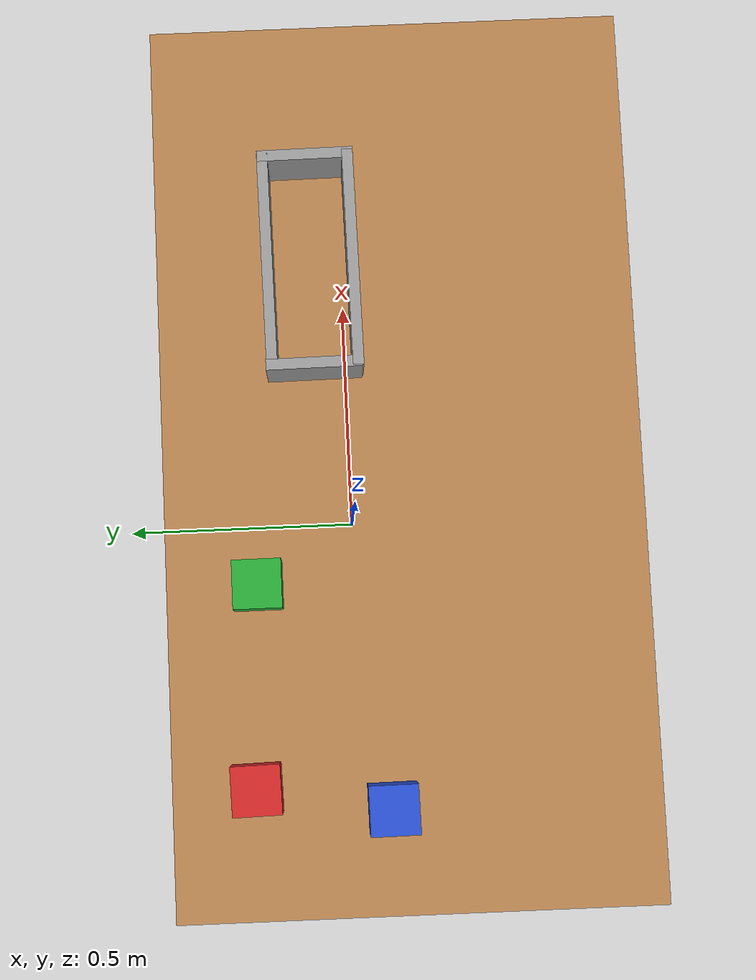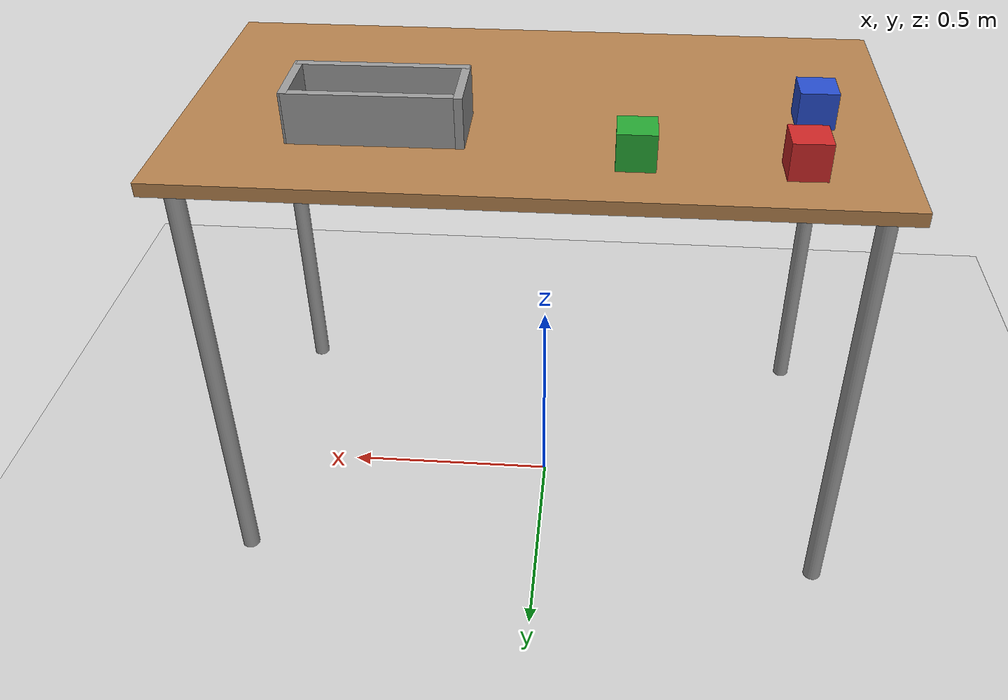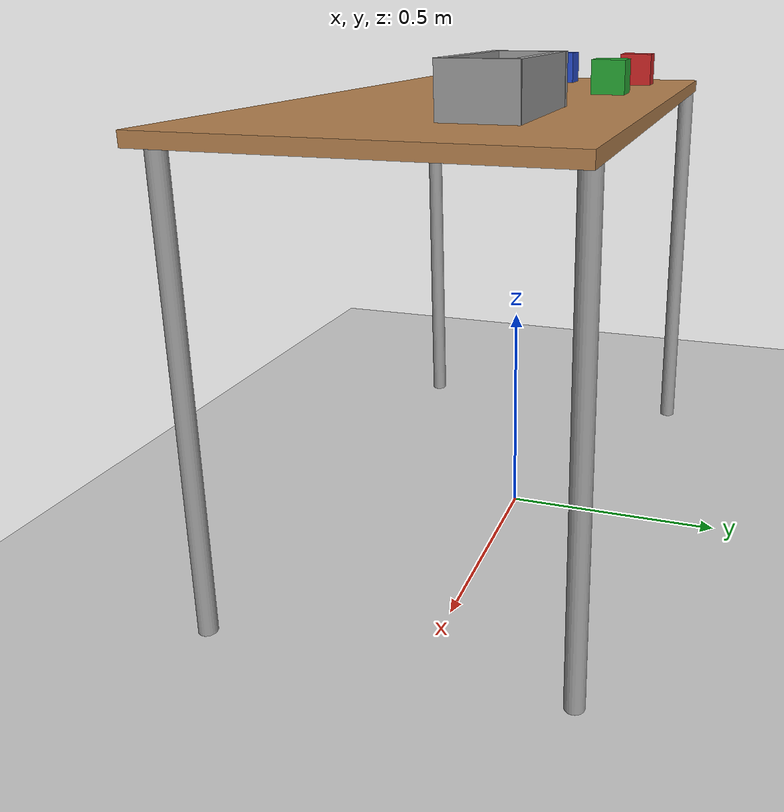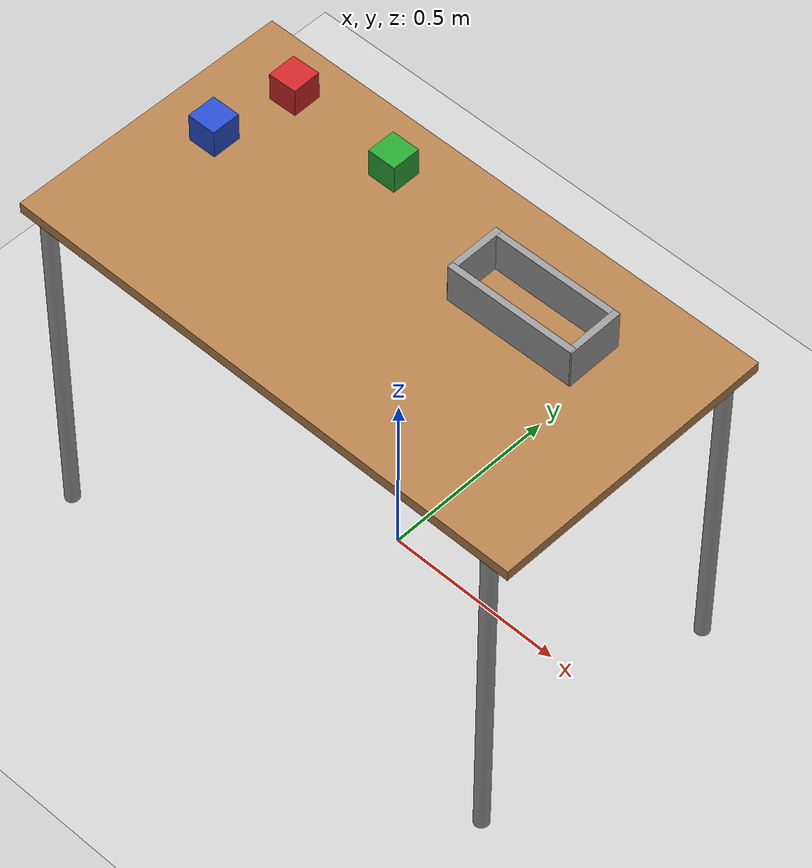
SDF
<sdf version="1.6">
 <world name="default">
  <model name="ground_plane">
   <static>1</static>
   <link name="link">
    <collision name="collision">
     <geometry><plane><normal>0 0 1</normal><size>100 100</size></plane></geometry>
     <surface>
      <contact><collide_bitmask>65535</collide_bitmask></contact>
      <friction><ode><mu>100</mu><mu2>50</mu2></ode></friction>
     </surface>
    </collision>
    <visual name="visual">
     <cast_shadows>0</cast_shadows>
     <geometry><plane><normal>0 0 1</normal><size>100 100</size></plane></geometry>
     <material>
      <script><uri>file://media/materials/scripts/gazebo.material</uri><name>Gazebo/Grey</name></script>
     </material>
    </visual>
   </link>
  </model>
  <light name="sun" type="directional">
   <pose>0 0 10 0 -0 0</pose>
   <diffuse>0.8 0.8 0.8 1</diffuse>
   <specular>0.2 0.2 0.2 1</specular>
   <attenuation>
    <range>1000</range>
    <constant>0.9</constant>
    <linear>0.01</linear>
    <quadratic>0.001</quadratic>
   </attenuation>
   <direction>-0.5 0.1 -0.9</direction>
  </light>
  <physics name="default_physics" default="0" type="ode">
   <max_step_size>0.001</max_step_size>
   <real_time_factor>1</real_time_factor>
   <real_time_update_rate>1000</real_time_update_rate>
  </physics>
  <gravity>0 0 -9.81</gravity>
  <magnetic_field>6e-06 2.3e-05 -4.2e-05</magnetic_field>
  <atmosphere type="adiabatic"/>
  <scene><ambient>0.4 0.4 0.4 1</ambient><background>0.7 0.7 0.7 1</background><shadows>1</shadows></scene>
  <audio><device>default</device></audio>
  <spherical_coordinates>
   <surface_model>EARTH_WGS84</surface_model>
   <latitude_deg>0</latitude_deg>
   <longitude_deg>0</longitude_deg>
   <elevation>0</elevation>
   <heading_deg>0</heading_deg>
  </spherical_coordinates>
  <model name="table_clone">
   <static>1</static>
   <link name="link">
    <collision name="surface">
     <pose>0 0 1 0 -0 0</pose>
     <geometry><box><size>1.5 0.8 0.03</size></box></geometry>
     <surface><friction><ode><mu>0.6</mu><mu2>0.6</mu2></ode></friction></surface>
    </collision>
    <visual name="visual1">
     <pose>0 0 1 0 -0 0</pose>
     <geometry><box><size>1.5 0.8 0.03</size></box></geometry>
     <material>
      <script><uri>file://media/materials/scripts/gazebo.material</uri><name>Gazebo/Wood</name></script>
     </material>
    </visual>
    <collision name="front_left_leg">
     <pose>0.68 0.38 0.5 0 -0 0</pose>
     <geometry><cylinder><radius>0.02</radius><length>1</length></cylinder></geometry>
    </collision>
    <visual name="front_left_leg">
     <pose>0.68 0.38 0.5 0 -0 0</pose>
     <geometry><cylinder><radius>0.02</radius><length>1</length></cylinder></geometry>
     <material>
      <script><uri>file://media/materials/scripts/gazebo.material</uri><name>Gazebo/Grey</name></script>
     </material>
    </visual>
    <collision name="front_right_leg">
     <pose>0.68 -0.38 0.5 0 -0 0</pose>
     <geometry><cylinder><radius>0.02</radius><length>1</length></cylinder></geometry>
    </collision>
    <visual name="front_right_leg">
     <pose>0.68 -0.38 0.5 0 -0 0</pose>
     <geometry><cylinder><radius>0.02</radius><length>1</length></cylinder></geometry>
     <material>
      <script><uri>file://media/materials/scripts/gazebo.material</uri><name>Gazebo/Grey</name></script>
     </material>
    </visual>
    <collision name="back_right_leg">
     <pose>-0.68 -0.38 0.5 0 -0 0</pose>
     <geometry><cylinder><radius>0.02</radius><length>1</length></cylinder></geometry>
    </collision>
    <visual name="back_right_leg">
     <pose>-0.68 -0.38 0.5 0 -0 0</pose>
     <geometry><cylinder><radius>0.02</radius><length>1</length></cylinder></geometry>
     <material>
      <script><uri>file://media/materials/scripts/gazebo.material</uri><name>Gazebo/Grey</name></script>
     </material>
    </visual>
    <collision name="back_left_leg">
     <pose>-0.68 0.38 0.5 0 -0 0</pose>
     <geometry><cylinder><radius>0.02</radius><length>1</length></cylinder></geometry>
    </collision>
    <visual name="back_left_leg">
     <pose>-0.68 0.38 0.5 0 -0 0</pose>
     <geometry><cylinder><radius>0.02</radius><length>1</length></cylinder></geometry>
     <material>
      <script><uri>file://media/materials/scripts/gazebo.material</uri><name>Gazebo/Grey</name></script>
     </material>
    </visual>
   </link>
   <pose>0.019553 -0.071317 0 0 -0 0</pose>
  </model>
  <model name="GreenBox">
   <link name="link">
    <inertial>
     <mass>0.29</mass>
     <inertia>
      <ixx>0.00193333</ixx>
      <ixy>0</ixy>
      <ixz>0</ixz>
      <iyy>0.00193333</iyy>
      <iyz>0</iyz>
      <izz>0.00193333</izz>
     </inertia>
    </inertial>
    <visual name="visual">
     <geometry><box><size>0.08 0.08 0.08</size></box></geometry>
     <material>
      <script><name>Gazebo/Green</name><uri>file://media/materials/scripts/gazebo.material</uri></script>
      <shader type="vertex"><normal_map>__default__</normal_map></shader>
      <ambient>0 0.3 0 1</ambient>
      <diffuse>0.7 0.7 0.7 1</diffuse>
      <specular>0.01 0.01 0.01 1</specular>
      <emissive>0 0 0 1</emissive>
     </material>
    </visual>
    <collision name="collision">
     <geometry><box><size>0.081 0.081 0.081</size></box></geometry>
     <surface>
      <friction>
       <ode><mu>1</mu><mu2>1</mu2><fdir1>0 0 0</fdir1><slip1>0</slip1><slip2>0</slip2></ode>
       <torsional>
        <coefficient>1</coefficient>
        <patch_radius>0</patch_radius>
        <surface_radius>0</surface_radius>
        <use_patch_radius>1</use_patch_radius>
        <ode><slip>0</slip></ode>
       </torsional>
      </friction>
      <bounce><restitution_coefficient>0</restitution_coefficient><threshold>1e+06</threshold></bounce>
      <contact>
       <collide_without_contact>0</collide_without_contact>
       <collide_without_contact_bitmask>1</collide_without_contact_bitmask>
       <collide_bitmask>1</collide_bitmask>
       <ode>
        <soft_cfm>0</soft_cfm>
        <soft_erp>0.2</soft_erp>
        <kp>1e+13</kp>
        <kd>1</kd>
        <max_vel>0.01</max_vel>
        <min_depth>0</min_depth>
       </ode>
       <bullet>
        <split_impulse>1</split_impulse>
        <split_impulse_penetration_threshold>-0.01</split_impulse_penetration_threshold>
        <soft_cfm>0</soft_cfm>
        <soft_erp>0.2</soft_erp>
        <kp>1e+13</kp>
        <kd>1</kd>
       </bullet>
      </contact>
     </surface>
    </collision>
   </link>
   <static>0</static>
   <pose>-0.18866 0.175884 1.0555 -3.6e-05 3.1e-05 0.001832</pose>
  </model>
  <model name="RedBox">
   <link name="link">
    <inertial>
     <mass>0.29</mass>
     <inertia>
      <ixx>0.00193333</ixx>
      <ixy>0</ixy>
      <ixz>0</ixz>
      <iyy>0.00193333</iyy>
      <iyz>0</iyz>
      <izz>0.00193333</izz>
     </inertia>
    </inertial>
    <visual name="visual">
     <geometry><box><size>0.08 0.08 0.08</size></box></geometry>
     <material>
      <script><name>Gazebo/Red</name><uri>file://media/materials/scripts/gazebo.material</uri></script>
      <shader type="vertex"><normal_map>__default__</normal_map></shader>
      <ambient>0.3 0 0 1</ambient>
      <diffuse>0.7 0.7 0.7 1</diffuse>
      <specular>0.01 0.01 0.01 1</specular>
      <emissive>0 0 0 1</emissive>
     </material>
    </visual>
    <collision name="collision">
     <geometry><box><size>0.081 0.081 0.081</size></box></geometry>
     <surface>
      <friction>
       <ode><mu>1</mu><mu2>1</mu2><fdir1>0 0 0</fdir1><slip1>0</slip1><slip2>0</slip2></ode>
       <torsional>
        <coefficient>1</coefficient>
        <patch_radius>0</patch_radius>
        <surface_radius>0</surface_radius>
        <use_patch_radius>1</use_patch_radius>
        <ode><slip>0</slip></ode>
       </torsional>
      </friction>
      <bounce><restitution_coefficient>0</restitution_coefficient><threshold>1e+06</threshold></bounce>
      <contact>
       <collide_without_contact>0</collide_without_contact>
       <collide_without_contact_bitmask>1</collide_without_contact_bitmask>
       <collide_bitmask>1</collide_bitmask>
       <ode>
        <soft_cfm>0</soft_cfm>
        <soft_erp>0.2</soft_erp>
        <kp>1e+13</kp>
        <kd>1</kd>
        <max_vel>0.01</max_vel>
        <min_depth>0</min_depth>
       </ode>
       <bullet>
        <split_impulse>1</split_impulse>
        <split_impulse_penetration_threshold>-0.01</split_impulse_penetration_threshold>
        <soft_cfm>0</soft_cfm>
        <soft_erp>0.2</soft_erp>
        <kp>1e+13</kp>
        <kd>1</kd>
       </bullet>
      </contact>
     </surface>
    </collision>
   </link>
   <static>0</static>
   <pose>-0.516592 0.188856 1.0555 3.8e-05 2.6e-05 0.023303</pose>
  </model>
  <model name="BlueBox">
   <link name="link">
    <inertial>
     <mass>0.29</mass>
     <inertia>
      <ixx>0.00193333</ixx>
      <ixy>0</ixy>
      <ixz>0</ixz>
      <iyy>0.00193333</iyy>
      <iyz>0</iyz>
      <izz>0.00193333</izz>
     </inertia>
    </inertial>
    <visual name="visual">
     <geometry><box><size>0.08 0.08 0.08</size></box></geometry>
     <material>
      <script><name>Gazebo/Blue</name><uri>file://media/materials/scripts/gazebo.material</uri></script>
      <shader type="vertex"><normal_map>__default__</normal_map></shader>
      <ambient>0 0 0.3 1</ambient>
      <diffuse>0.7 0.7 0.7 1</diffuse>
      <specular>0.01 0.01 0.01 1</specular>
      <emissive>0 0 0 1</emissive>
     </material>
    </visual>
    <collision name="collision">
     <geometry><box><size>0.081 0.081 0.081</size></box></geometry>
     <surface>
      <friction>
       <ode><mu>1</mu><mu2>1</mu2><fdir1>0 0 0</fdir1><slip1>0</slip1><slip2>0</slip2></ode>
       <torsional>
        <coefficient>1</coefficient>
        <patch_radius>0</patch_radius>
        <surface_radius>0</surface_radius>
        <use_patch_radius>1</use_patch_radius>
        <ode><slip>0</slip></ode>
       </torsional>
      </friction>
      <bounce><restitution_coefficient>0</restitution_coefficient><threshold>1e+06</threshold></bounce>
      <contact>
       <collide_without_contact>0</collide_without_contact>
       <collide_without_contact_bitmask>1</collide_without_contact_bitmask>
       <collide_bitmask>1</collide_bitmask>
       <ode>
        <soft_cfm>0</soft_cfm>
        <soft_erp>0.2</soft_erp>
        <kp>1e+13</kp>
        <kd>1</kd>
        <max_vel>0.01</max_vel>
        <min_depth>0</min_depth>
       </ode>
       <bullet>
        <split_impulse>1</split_impulse>
        <split_impulse_penetration_threshold>-0.01</split_impulse_penetration_threshold>
        <soft_cfm>0</soft_cfm>
        <soft_erp>0.2</soft_erp>
        <kp>1e+13</kp>
        <kd>1</kd>
       </bullet>
      </contact>
     </surface>
    </collision>
   </link>
   <static>0</static>
   <pose>-0.556283 -0.029344 1.0555 0 -1.9e-05 0.009847</pose>
  </model>
  <model name="DepositBox">
   <link name="link_0">
    <inertial>
     <mass>0.00071026</mass>
     <inertia>
      <ixx>7.3e-07</ixx>
      <ixy>0</ixy>
      <ixz>0</ixz>
      <iyy>8.36e-06</iyy>
      <iyz>0</iyz>
      <izz>7.66e-06</izz>
     </inertia>
    </inertial>
    <pose>-0 -0.07 5e-06 0 -0 0</pose>
    <visual name="visual">
     <geometry><box><size>0.359288 0.017976 0.109964</size></box></geometry>
     <material>
      <lighting>1</lighting>
      <script><uri>file://media/materials/scripts/gazebo.material</uri><name>Gazebo/Grey</name></script>
      <emissive>0 0 0 1</emissive>
      <shader type="vertex"><normal_map>__default__</normal_map></shader>
      <ambient>0.3 0.3 0.3 1</ambient>
      <diffuse>0.7 0.7 0.7 1</diffuse>
      <specular>0.1 0.1 0.1 1</specular>
     </material>
    </visual>
    <collision name="collision">
     <geometry><box><size>0.359288 0.017976 0.109964</size></box></geometry>
     <surface>
      <friction>
       <ode><mu>1</mu><mu2>1</mu2><fdir1>0 0 0</fdir1><slip1>0</slip1><slip2>0</slip2></ode>
       <torsional>
        <coefficient>1</coefficient>
        <patch_radius>0</patch_radius>
        <surface_radius>0</surface_radius>
        <use_patch_radius>1</use_patch_radius>
        <ode><slip>0</slip></ode>
       </torsional>
      </friction>
      <bounce><restitution_coefficient>0</restitution_coefficient><threshold>1e+06</threshold></bounce>
      <contact>
       <collide_without_contact>0</collide_without_contact>
       <collide_without_contact_bitmask>1</collide_without_contact_bitmask>
       <collide_bitmask>1</collide_bitmask>
       <ode>
        <soft_cfm>0</soft_cfm>
        <soft_erp>0.2</soft_erp>
        <kp>1e+13</kp>
        <kd>1</kd>
        <max_vel>0.01</max_vel>
        <min_depth>0</min_depth>
       </ode>
       <bullet>
        <split_impulse>1</split_impulse>
        <split_impulse_penetration_threshold>-0.01</split_impulse_penetration_threshold>
        <soft_cfm>0</soft_cfm>
        <soft_erp>0.2</soft_erp>
        <kp>1e+13</kp>
        <kd>1</kd>
       </bullet>
      </contact>
     </surface>
    </collision>
   </link>
   <link name="link_0_clone">
    <inertial>
     <mass>0.00071026</mass>
     <inertia>
      <ixx>7.3e-07</ixx>
      <ixy>0</ixy>
      <ixz>0</ixz>
      <iyy>8.36e-06</iyy>
      <iyz>0</iyz>
      <izz>7.66e-06</izz>
     </inertia>
    </inertial>
    <pose>0 0.07 0 0 -0 0</pose>
    <visual name="visual">
     <geometry><box><size>0.359288 0.017976 0.109964</size></box></geometry>
     <material>
      <lighting>1</lighting>
      <script><uri>file://media/materials/scripts/gazebo.material</uri><name>Gazebo/Grey</name></script>
      <shader type="pixel"><normal_map>__default__</normal_map></shader>
      <emissive>0 0 0 1</emissive>
      <ambient>0.3 0.3 0.3 1</ambient>
      <diffuse>0.7 0.7 0.7 1</diffuse>
      <specular>0.01 0.01 0.01 1</specular>
     </material>
    </visual>
    <collision name="collision">
     <geometry><box><size>0.359288 0.017976 0.109964</size></box></geometry>
     <surface>
      <friction>
       <ode><mu>1</mu><mu2>1</mu2><fdir1>0 0 0</fdir1><slip1>0</slip1><slip2>0</slip2></ode>
       <torsional>
        <coefficient>1</coefficient>
        <patch_radius>0</patch_radius>
        <surface_radius>0</surface_radius>
        <use_patch_radius>1</use_patch_radius>
        <ode><slip>0</slip></ode>
       </torsional>
      </friction>
      <bounce><restitution_coefficient>0</restitution_coefficient><threshold>1e+06</threshold></bounce>
      <contact>
       <collide_without_contact>0</collide_without_contact>
       <collide_without_contact_bitmask>1</collide_without_contact_bitmask>
       <collide_bitmask>1</collide_bitmask>
       <ode>
        <soft_cfm>0</soft_cfm>
        <soft_erp>0.2</soft_erp>
        <kp>1e+13</kp>
        <kd>1</kd>
        <max_vel>0.01</max_vel>
        <min_depth>0</min_depth>
       </ode>
       <bullet>
        <split_impulse>1</split_impulse>
        <split_impulse_penetration_threshold>-0.01</split_impulse_penetration_threshold>
        <soft_cfm>0</soft_cfm>
        <soft_erp>0.2</soft_erp>
        <kp>1e+13</kp>
        <kd>1</kd>
       </bullet>
      </contact>
     </surface>
    </collision>
   </link>
   <link name="link_0_clone_0">
    <inertial>
     <mass>0.00033889</mass>
     <inertia><ixx>3.5e-07</ixx><ixy>0</ixy><ixz>0</ixz><iyy>1.17e-06</iyy><iyz>0</iyz><izz>8.4e-07</izz></inertia>
    </inertial>
    <pose>-0.172905 0.001548 4e-06 0 -0 -1.57234</pose>
    <visual name="visual">
     <geometry><box><size>0.157 0.017976 0.109964</size></box></geometry>
     <material>
      <lighting>1</lighting>
      <script><uri>file://media/materials/scripts/gazebo.material</uri><name>Gazebo/Grey</name></script>
      <shader type="vertex"><normal_map>__default__</normal_map></shader>
      <emissive>0 0 0 1</emissive>
      <ambient>0.3 0.3 0.3 1</ambient>
      <diffuse>0.7 0.7 0.7 1</diffuse>
      <specular>0.01 0.01 0.01 1</specular>
     </material>
    </visual>
    <collision name="collision">
     <geometry><box><size>0.171428 0.017976 0.109964</size></box></geometry>
     <surface>
      <friction>
       <ode><mu>1</mu><mu2>1</mu2><fdir1>0 0 0</fdir1><slip1>0</slip1><slip2>0</slip2></ode>
       <torsional>
        <coefficient>1</coefficient>
        <patch_radius>0</patch_radius>
        <surface_radius>0</surface_radius>
        <use_patch_radius>1</use_patch_radius>
        <ode><slip>0</slip></ode>
       </torsional>
      </friction>
      <bounce><restitution_coefficient>0</restitution_coefficient><threshold>1e+06</threshold></bounce>
      <contact>
       <collide_without_contact>0</collide_without_contact>
       <collide_without_contact_bitmask>1</collide_without_contact_bitmask>
       <collide_bitmask>1</collide_bitmask>
       <ode>
        <soft_cfm>0</soft_cfm>
        <soft_erp>0.2</soft_erp>
        <kp>1e+13</kp>
        <kd>1</kd>
        <max_vel>0.01</max_vel>
        <min_depth>0</min_depth>
       </ode>
       <bullet>
        <split_impulse>1</split_impulse>
        <split_impulse_penetration_threshold>-0.01</split_impulse_penetration_threshold>
        <soft_cfm>0</soft_cfm>
        <soft_erp>0.2</soft_erp>
        <kp>1e+13</kp>
        <kd>1</kd>
       </bullet>
      </contact>
     </surface>
    </collision>
   </link>
   <link name="link_0_clone_0_clone">
    <inertial>
     <mass>0.00033759</mass>
     <inertia><ixx>3.5e-07</ixx><ixy>0</ixy><ixz>0</ixz><iyy>1.16e-06</iyy><iyz>0</iyz><izz>8.3e-07</izz></inertia>
    </inertial>
    <pose>0.175 0 -0 0 -0 -1.57234</pose>
    <visual name="visual">
     <geometry><box><size>0.157 0.017976 0.109964</size></box></geometry>
     <material>
      <lighting>1</lighting>
      <script><uri>file://media/materials/scripts/gazebo.material</uri><name>Gazebo/Grey</name></script>
      <shader type="pixel"><normal_map>__default__</normal_map></shader>
      <emissive>0 0 0 1</emissive>
      <ambient>0.3 0.3 0.3 1</ambient>
      <diffuse>0.7 0.7 0.7 1</diffuse>
      <specular>0.01 0.01 0.01 1</specular>
     </material>
    </visual>
    <collision name="collision">
     <geometry><box><size>0.170763 0.017976 0.109964</size></box></geometry>
     <surface>
      <friction>
       <ode><mu>1</mu><mu2>1</mu2><fdir1>0 0 0</fdir1><slip1>0</slip1><slip2>0</slip2></ode>
       <torsional>
        <coefficient>1</coefficient>
        <patch_radius>0</patch_radius>
        <surface_radius>0</surface_radius>
        <use_patch_radius>1</use_patch_radius>
        <ode><slip>0</slip></ode>
       </torsional>
      </friction>
      <bounce><restitution_coefficient>0</restitution_coefficient><threshold>1e+06</threshold></bounce>
      <contact>
       <collide_without_contact>0</collide_without_contact>
       <collide_without_contact_bitmask>1</collide_without_contact_bitmask>
       <collide_bitmask>1</collide_bitmask>
       <ode>
        <soft_cfm>0</soft_cfm>
        <soft_erp>0.2</soft_erp>
        <kp>1e+13</kp>
        <kd>1</kd>
        <max_vel>0.01</max_vel>
        <min_depth>0</min_depth>
       </ode>
       <bullet>
        <split_impulse>1</split_impulse>
        <split_impulse_penetration_threshold>-0.01</split_impulse_penetration_threshold>
        <soft_cfm>0</soft_cfm>
        <soft_erp>0.2</soft_erp>
        <kp>1e+13</kp>
        <kd>1</kd>
       </bullet>
      </contact>
     </surface>
    </collision>
   </link>
   <joint name="link_0_clone_0_clone_JOINT_0" type="fixed">
    <parent>link_0_clone_0_clone</parent>
    <child>link_0</child>
    <physics>
     <ode><limit><cfm>0</cfm><erp>0.2</erp></limit><suspension><cfm>0</cfm><erp>0.2</erp></suspension></ode>
    </physics>
   </joint>
   <joint name="link_0_clone_0_clone_JOINT_1" type="fixed">
    <parent>link_0_clone_0_clone</parent>
    <child>link_0_clone</child>
    <physics>
     <ode><limit><cfm>0</cfm><erp>0.2</erp></limit><suspension><cfm>0</cfm><erp>0.2</erp></suspension></ode>
    </physics>
   </joint>
   <joint name="link_0_clone_0_clone_JOINT_2" type="fixed">
    <parent>link_0_clone_0_clone</parent>
    <child>link_0_clone_0</child>
    <physics>
     <ode><limit><cfm>0</cfm><erp>0.2</erp></limit><suspension><cfm>0</cfm><erp>0.2</erp></suspension></ode>
    </physics>
   </joint>
   <static>0</static>
   <pose>0.335804 0.068975 1.06998 1.2e-05 -1.4e-05 0.010812</pose>
  </model>
 </world>
</sdf>
